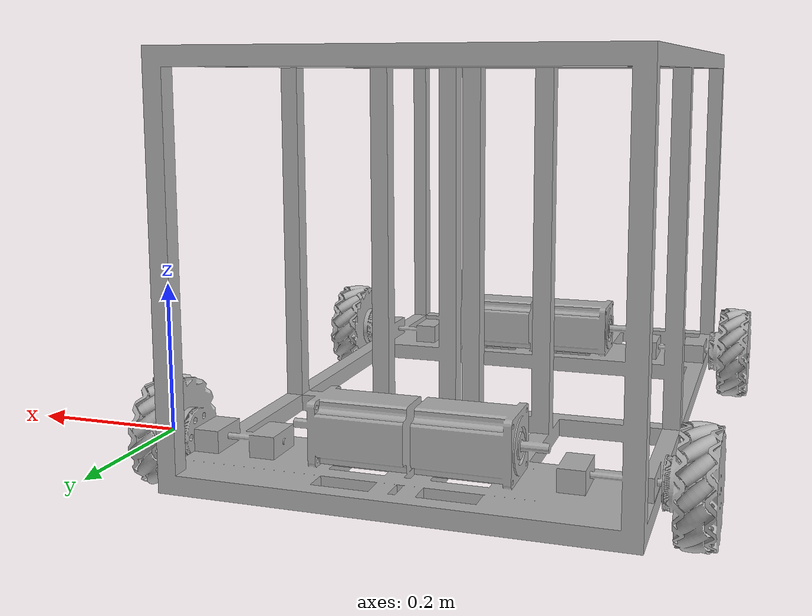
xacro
<?xml version="1.0" ?>
<robot name="base_export" xmlns:xacro="http://www.ros.org/wiki/xacro">

<xacro:include filename="$(find base_export_description)/urdf/materials.xacro" />
<xacro:include filename="$(find base_export_description)/urdf/base_export.trans" />
<xacro:include filename="$(find base_export_description)/urdf/base_export.gazebo" />
<link name="base_link">
  <inertial>
    <origin rpy="0 0 0" xyz="-0.3482345382752994 -0.27514770765017643 0.19695481512469734"/>
    <mass value="155.853533341384"/>
    <inertia ixx="24.527524" ixy="0.013804" ixz="-0.002107" iyy="13.832614" iyz="-2.456883" izz="21.12491"/>
  </inertial>
  <visual>
    <origin rpy="0 0 0" xyz="0 0 0"/>
    <geometry>
      <mesh filename="package://base_export_description/meshes/base_link.stl" scale="0.001 0.001 0.001"/>
    </geometry>
    <material name="silver"/>
  </visual>
  <collision>
    <origin rpy="0 0 0" xyz="0 0 0"/>
    <geometry>
      <mesh filename="package://base_export_description/meshes/base_link.stl" scale="0.001 0.001 0.001"/>
    </geometry>
  </collision>
</link>

<link name="Double_Wheel__Thin__v11_v3_1">
  <inertial>
    <origin rpy="0 0 0" xyz="-0.027863208093181154 -6.429566710543232e-11 5.495589618411427e-10"/>
    <mass value="3.260021800926923"/>
    <inertia ixx="0.009383" ixy="0.0" ixz="-0.0" iyy="0.005841" iyz="-0.0" izz="0.005841"/>
  </inertial>
  <visual>
    <origin rpy="0 0 0" xyz="-0.024 -0.0 0.0"/>
    <geometry>
      <mesh filename="package://base_export_description/meshes/Double_Wheel__Thin__v11_v3_1.stl" scale="0.001 0.001 0.001"/>
    </geometry>
    <material name="silver"/>
  </visual>
  <collision>
    <origin rpy="0 0 0" xyz="-0.024 -0.0 0.0"/>
    <geometry>
      <mesh filename="package://base_export_description/meshes/Double_Wheel__Thin__v11_v3_1.stl" scale="0.001 0.001 0.001"/>
    </geometry>
  </collision>
</link>

<link name="Double_Wheel__Thin__v11_v3__1__1">
  <inertial>
    <origin rpy="0 0 0" xyz="0.027863044321248198 1.7510568478515984e-07 5.493755826604987e-10"/>
    <mass value="3.260021800926923"/>
    <inertia ixx="0.009383" ixy="0.0" ixz="0.0" iyy="0.005841" iyz="0.0" izz="0.005841"/>
  </inertial>
  <visual>
    <origin rpy="0 0 0" xyz="0.72108 0.000192 0.0"/>
    <geometry>
      <mesh filename="package://base_export_description/meshes/Double_Wheel__Thin__v11_v3__1__1.stl" scale="0.001 0.001 0.001"/>
    </geometry>
    <material name="silver"/>
  </visual>
  <collision>
    <origin rpy="0 0 0" xyz="0.72108 0.000192 0.0"/>
    <geometry>
      <mesh filename="package://base_export_description/meshes/Double_Wheel__Thin__v11_v3__1__1.stl" scale="0.001 0.001 0.001"/>
    </geometry>
  </collision>
</link>

<link name="Double_Wheel__Thin__v11_v3__2__1">
  <inertial>
    <origin rpy="0 0 0" xyz="-0.027863208093183288 -6.429579091360438e-11 5.495594355558359e-10"/>
    <mass value="3.260021800926923"/>
    <inertia ixx="0.009383" ixy="0.0" ixz="-0.0" iyy="0.005841" iyz="-0.0" izz="0.005841"/>
  </inertial>
  <visual>
    <origin rpy="0 0 0" xyz="-0.024 0.665 -0.0"/>
    <geometry>
      <mesh filename="package://base_export_description/meshes/Double_Wheel__Thin__v11_v3__2__1.stl" scale="0.001 0.001 0.001"/>
    </geometry>
    <material name="silver"/>
  </visual>
  <collision>
    <origin rpy="0 0 0" xyz="-0.024 0.665 -0.0"/>
    <geometry>
      <mesh filename="package://base_export_description/meshes/Double_Wheel__Thin__v11_v3__2__1.stl" scale="0.001 0.001 0.001"/>
    </geometry>
  </collision>
</link>

<link name="Double_Wheel__Thin__v11_v3__3__1">
  <inertial>
    <origin rpy="0 0 0" xyz="0.027863044321161157 1.7510568439682572e-07 5.495610077369151e-10"/>
    <mass value="3.260021800926923"/>
    <inertia ixx="0.009383" ixy="0.0" ixz="0.0" iyy="0.005841" iyz="0.0" izz="0.005841"/>
  </inertial>
  <visual>
    <origin rpy="0 0 0" xyz="0.72108 0.665192 -0.0"/>
    <geometry>
      <mesh filename="package://base_export_description/meshes/Double_Wheel__Thin__v11_v3__3__1.stl" scale="0.001 0.001 0.001"/>
    </geometry>
    <material name="silver"/>
  </visual>
  <collision>
    <origin rpy="0 0 0" xyz="0.72108 0.665192 -0.0"/>
    <geometry>
      <mesh filename="package://base_export_description/meshes/Double_Wheel__Thin__v11_v3__3__1.stl" scale="0.001 0.001 0.001"/>
    </geometry>
  </collision>
</link>

<joint name="Rev26" type="continuous">
  <origin rpy="0 0 0" xyz="0.024 0.0 0.0"/>
  <parent link="base_link"/>
  <child link="Double_Wheel__Thin__v11_v3_1"/>
  <axis xyz="-1.0 -0.0 0.0"/>
</joint>

<joint name="Rev27" type="continuous">
  <origin rpy="0 0 0" xyz="-0.72108 -0.000192 0.0"/>
  <parent link="base_link"/>
  <child link="Double_Wheel__Thin__v11_v3__1__1"/>
  <axis xyz="1.0 -0.0 -0.0"/>
</joint>

<joint name="Rev28" type="continuous">
  <origin rpy="0 0 0" xyz="0.024 -0.665 0.0"/>
  <parent link="base_link"/>
  <child link="Double_Wheel__Thin__v11_v3__2__1"/>
  <axis xyz="-1.0 -0.0 -0.0"/>
</joint>

<joint name="Rev29" type="continuous">
  <origin rpy="0 0 0" xyz="-0.72108 -0.665192 0.0"/>
  <parent link="base_link"/>
  <child link="Double_Wheel__Thin__v11_v3__3__1"/>
  <axis xyz="1.0 -0.0 -0.0"/>
</joint>

</robot>

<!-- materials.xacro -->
<robot name="base_export" xmlns:xacro="http://www.ros.org/wiki/xacro" >

<material name="silver">
  <color rgba="0.700 0.700 0.700 1.000"/>
</material>

</robot>

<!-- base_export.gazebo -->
<robot name="base_export" xmlns:xacro="http://www.ros.org/wiki/xacro" >

<xacro:property name="body_color" value="Gazebo/Silver" />

<gazebo>
  <plugin filename="libgazebo_ros_control.so" name="control"/>
</gazebo>
<gazebo reference="base_link">
  <material>${body_color}</material>
  <mu1>0.2</mu1>
  <mu2>0.2</mu2>
  <selfCollide>true</selfCollide>
  <gravity>true</gravity>
</gazebo>

<gazebo reference="Double_Wheel__Thin__v11_v3_1">
  <material>${body_color}</material>
  <mu1>0.2</mu1>
  <mu2>0.2</mu2>
  <selfCollide>true</selfCollide>
</gazebo>

<gazebo reference="Double_Wheel__Thin__v11_v3__1__1">
  <material>${body_color}</material>
  <mu1>0.2</mu1>
  <mu2>0.2</mu2>
  <selfCollide>true</selfCollide>
</gazebo>

<gazebo reference="Double_Wheel__Thin__v11_v3__2__1">
  <material>${body_color}</material>
  <mu1>0.2</mu1>
  <mu2>0.2</mu2>
  <selfCollide>true</selfCollide>
</gazebo>

<gazebo reference="Double_Wheel__Thin__v11_v3__3__1">
  <material>${body_color}</material>
  <mu1>0.2</mu1>
  <mu2>0.2</mu2>
  <selfCollide>true</selfCollide>
</gazebo>

</robot>
